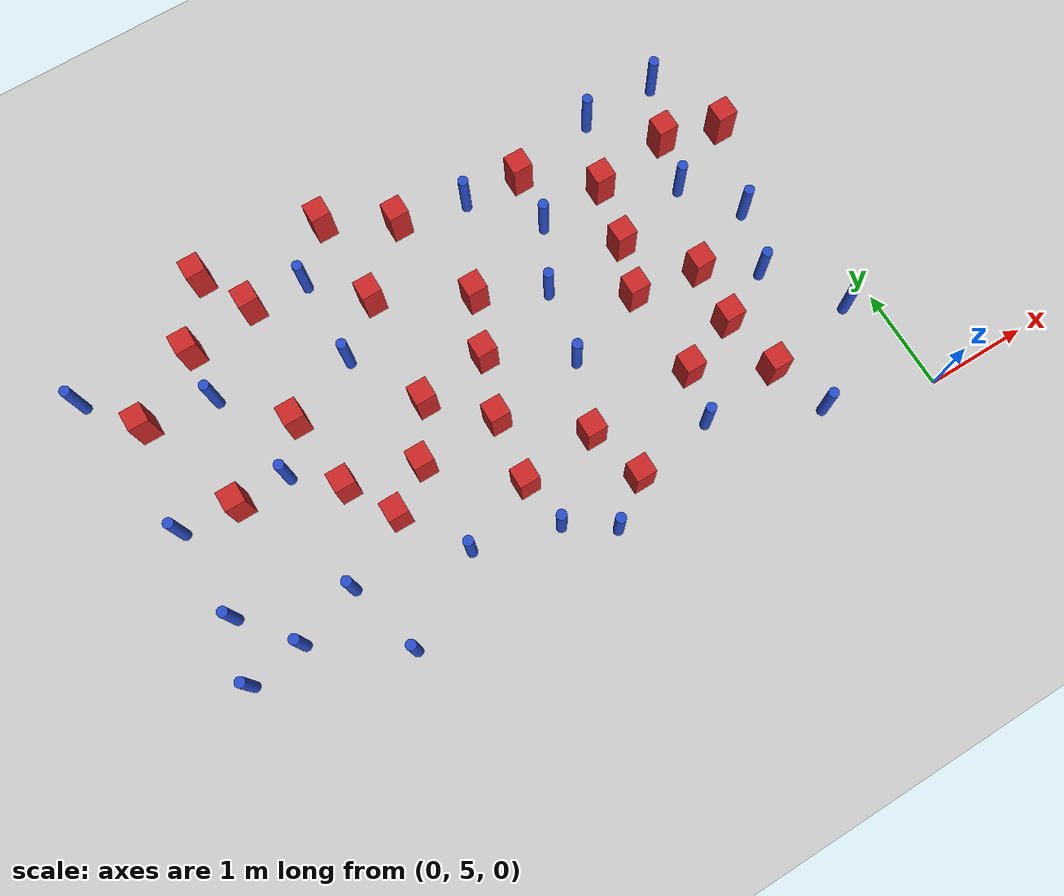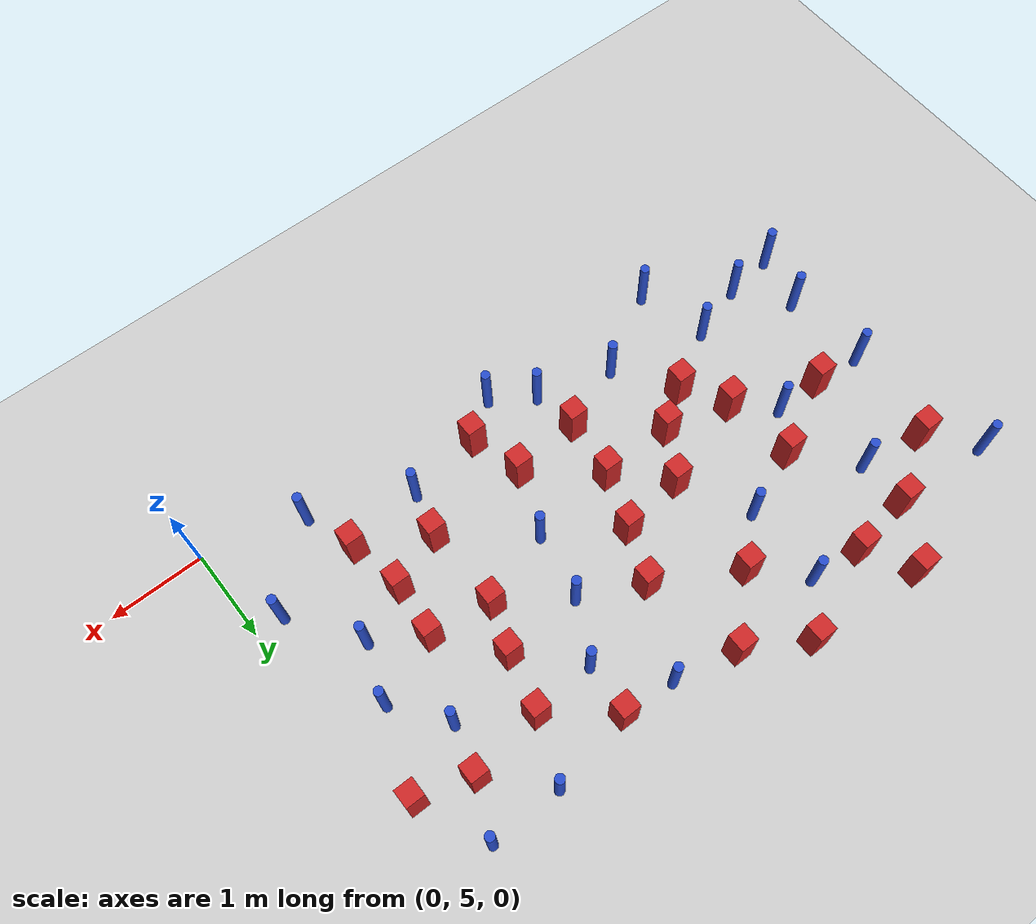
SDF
<sdf version="1.6">
 <world name="default">
  <model name="ground_plane">
   <static>1</static>
   <link name="link">
    <collision name="collision">
     <geometry><plane><normal>0 0 1</normal><size>100 100</size></plane></geometry>
     <surface><friction><ode><mu>100</mu><mu2>50</mu2></ode></friction></surface>
    </collision>
    <visual name="visual">
     <cast_shadows>0</cast_shadows>
     <geometry><plane><normal>0 0 1</normal><size>100 100</size></plane></geometry>
     <material>
      <ambient>1.0 1.0 1.0 1.0</ambient>
      <diffuse>0.8 0.8 0.8 1.0</diffuse>
      <specular>0.01 0.01 0.01 1.000000</specular>
     </material>
    </visual>
   </link>
  </model>
  <model name="pole_obstacle2">
   <static>true</static>
   <pose>-2.05235568331 5.7813444198 7.38925637345e-09 -8.47170692798e-08 1.24976765033e-08 -1.74513093019e-07</pose>
   <link name="link">
    <pose>0 0 0.3 0 -0 0</pose>
    <inertial>
     <mass>1</mass>
     <inertia><ixx>0.145833</ixx><ixy>0</ixy><ixz>0</ixz><iyy>0.145833</iyy><iyz>0</iyz><izz>0.125</izz></inertia>
    </inertial>
    <collision name="collision">
     <geometry><cylinder><radius>0.05</radius><length>.6</length></cylinder></geometry>
    </collision>
    <visual name="visual">
     <geometry><cylinder><radius>0.05</radius><length>.6</length></cylinder></geometry>
     <material>
      <script><name>Gazebo/Blue</name><uri>file://media/materials/scripts/gazebo.material</uri></script>
     </material>
    </visual>
   </link>
  </model>
  <model name="square_post_obstacle9">
   <static>true</static>
   <pose>-2.85442989702 5.66659609784 1.91545236811e-07 -7.35059704564e-06 1.12565212e-07 2.39332434364e-05</pose>
   <link name="link">
    <pose>0 0 0.25 0 -0 0</pose>
    <inertial>
     <mass>100</mass>
     <inertia>
      <ixx>0.166667</ixx>
      <ixy>0</ixy>
      <ixz>0</ixz>
      <iyy>0.166667</iyy>
      <iyz>0</iyz>
      <izz>0.166667</izz>
     </inertia>
    </inertial>
    <collision name="collision"><geometry><box><size>.2 .2 .5</size></box></geometry></collision>
    <visual name="visual">
     <geometry><box><size>.2 .2 .5</size></box></geometry>
     <material>
      <script><name>Gazebo/Red</name><uri>file://media/materials/scripts/gazebo.material</uri></script>
     </material>
    </visual>
   </link>
  </model>
  <model name="square_post_obstacle20">
   <static>true</static>
   <pose>-1.63090544055 8.28647198296 1.91545236811e-07 -7.35059704564e-06 1.12565212e-07 2.39332434364e-05</pose>
   <link name="link">
    <pose>0 0 0.25 0 -0 0</pose>
    <inertial>
     <mass>100</mass>
     <inertia>
      <ixx>0.166667</ixx>
      <ixy>0</ixy>
      <ixz>0</ixz>
      <iyy>0.166667</iyy>
      <iyz>0</iyz>
      <izz>0.166667</izz>
     </inertia>
    </inertial>
    <collision name="collision"><geometry><box><size>.2 .2 .5</size></box></geometry></collision>
    <visual name="visual">
     <geometry><box><size>.2 .2 .5</size></box></geometry>
     <material>
      <script><name>Gazebo/Red</name><uri>file://media/materials/scripts/gazebo.material</uri></script>
     </material>
    </visual>
   </link>
  </model>
  <model name="pole_obstacle17">
   <static>true</static>
   <pose>-2.30111560594 8.23910748175 7.38925637345e-09 -8.47170692793e-08 1.24976764408e-08 -1.74513093041e-07</pose>
   <link name="link">
    <pose>0 0 0.3 0 -0 0</pose>
    <inertial>
     <mass>1</mass>
     <inertia><ixx>0.145833</ixx><ixy>0</ixy><ixz>0</ixz><iyy>0.145833</iyy><iyz>0</iyz><izz>0.125</izz></inertia>
    </inertial>
    <collision name="collision">
     <geometry><cylinder><radius>0.05</radius><length>.6</length></cylinder></geometry>
    </collision>
    <visual name="visual">
     <geometry><cylinder><radius>0.05</radius><length>.6</length></cylinder></geometry>
     <material>
      <script><name>Gazebo/Blue</name><uri>file://media/materials/scripts/gazebo.material</uri></script>
     </material>
    </visual>
   </link>
  </model>
  <model name="square_post_obstacle30">
   <static>true</static>
   <pose>-0.283953292854 8.22880494381 1.91545236811e-07 -7.35059704564e-06 1.12565212e-07 2.39332434364e-05</pose>
   <link name="link">
    <pose>0 0 0.25 0 -0 0</pose>
    <inertial>
     <mass>100</mass>
     <inertia>
      <ixx>0.166667</ixx>
      <ixy>0</ixy>
      <ixz>0</ixz>
      <iyy>0.166667</iyy>
      <iyz>0</iyz>
      <izz>0.166667</izz>
     </inertia>
    </inertial>
    <collision name="collision"><geometry><box><size>.2 .2 .5</size></box></geometry></collision>
    <visual name="visual">
     <geometry><box><size>.2 .2 .5</size></box></geometry>
     <material>
      <script><name>Gazebo/Red</name><uri>file://media/materials/scripts/gazebo.material</uri></script>
     </material>
    </visual>
   </link>
  </model>
  <model name="square_post_obstacle32">
   <static>true</static>
   <pose>-5.16170095081 6.96884501505 1.91545236811e-07 -7.35059704564e-06 1.12565212e-07 2.39332434364e-05</pose>
   <link name="link">
    <pose>0 0 0.25 0 -0 0</pose>
    <inertial>
     <mass>100</mass>
     <inertia>
      <ixx>0.166667</ixx>
      <ixy>0</ixy>
      <ixz>0</ixz>
      <iyy>0.166667</iyy>
      <iyz>0</iyz>
      <izz>0.166667</izz>
     </inertia>
    </inertial>
    <collision name="collision"><geometry><box><size>.2 .2 .5</size></box></geometry></collision>
    <visual name="visual">
     <geometry><box><size>.2 .2 .5</size></box></geometry>
     <material>
      <script><name>Gazebo/Red</name><uri>file://media/materials/scripts/gazebo.material</uri></script>
     </material>
    </visual>
   </link>
  </model>
  <model name="pole_obstacle28">
   <static>true</static>
   <pose>-1.37038856872 8.95715696325 7.38925637345e-09 -8.47170692798e-08 1.24976764881e-08 -1.74513093027e-07</pose>
   <link name="link">
    <pose>0 0 0.3 0 -0 0</pose>
    <inertial>
     <mass>1</mass>
     <inertia><ixx>0.145833</ixx><ixy>0</ixy><ixz>0</ixz><iyy>0.145833</iyy><iyz>0</iyz><izz>0.125</izz></inertia>
    </inertial>
    <collision name="collision">
     <geometry><cylinder><radius>0.05</radius><length>.6</length></cylinder></geometry>
    </collision>
    <visual name="visual">
     <geometry><cylinder><radius>0.05</radius><length>.6</length></cylinder></geometry>
     <material>
      <script><name>Gazebo/Blue</name><uri>file://media/materials/scripts/gazebo.material</uri></script>
     </material>
    </visual>
   </link>
  </model>
  <model name="pole_obstacle42">
   <static>true</static>
   <pose>-3.68540518894 5.65697786786 7.38925637345e-09 -8.47170692798e-08 1.24976765033e-08 -1.74513093019e-07</pose>
   <link name="link">
    <pose>0 0 0.3 0 -0 0</pose>
    <inertial>
     <mass>1</mass>
     <inertia><ixx>0.145833</ixx><ixy>0</ixy><ixz>0</ixz><iyy>0.145833</iyy><iyz>0</iyz><izz>0.125</izz></inertia>
    </inertial>
    <collision name="collision">
     <geometry><cylinder><radius>0.05</radius><length>.6</length></cylinder></geometry>
    </collision>
    <visual name="visual">
     <geometry><cylinder><radius>0.05</radius><length>.6</length></cylinder></geometry>
     <material>
      <script><name>Gazebo/Blue</name><uri>file://media/materials/scripts/gazebo.material</uri></script>
     </material>
    </visual>
   </link>
  </model>
  <model name="pole_obstacle44">
   <static>true</static>
   <pose>-0.303136559903 6.04347579707 7.38925637345e-09 -8.471706928e-08 1.24976765079e-08 -1.74513093015e-07</pose>
   <link name="link">
    <pose>0 0 0.3 0 -0 0</pose>
    <inertial>
     <mass>1</mass>
     <inertia><ixx>0.145833</ixx><ixy>0</ixy><ixz>0</ixz><iyy>0.145833</iyy><iyz>0</iyz><izz>0.125</izz></inertia>
    </inertial>
    <collision name="collision">
     <geometry><cylinder><radius>0.05</radius><length>.6</length></cylinder></geometry>
    </collision>
    <visual name="visual">
     <geometry><cylinder><radius>0.05</radius><length>.6</length></cylinder></geometry>
     <material>
      <script><name>Gazebo/Blue</name><uri>file://media/materials/scripts/gazebo.material</uri></script>
     </material>
    </visual>
   </link>
  </model>
  <model name="square_post_obstacle44">
   <static>true</static>
   <pose>-4.47074708035 6.7832604496 1.91545236811e-07 -7.35059704564e-06 1.12565212e-07 2.39332434364e-05</pose>
   <link name="link">
    <pose>0 0 0.25 0 -0 0</pose>
    <inertial>
     <mass>100</mass>
     <inertia>
      <ixx>0.166667</ixx>
      <ixy>0</ixy>
      <ixz>0</ixz>
      <iyy>0.166667</iyy>
      <iyz>0</iyz>
      <izz>0.166667</izz>
     </inertia>
    </inertial>
    <collision name="collision"><geometry><box><size>.2 .2 .5</size></box></geometry></collision>
    <visual name="visual">
     <geometry><box><size>.2 .2 .5</size></box></geometry>
     <material>
      <script><name>Gazebo/Red</name><uri>file://media/materials/scripts/gazebo.material</uri></script>
     </material>
    </visual>
   </link>
  </model>
  <model name="square_post_obstacle45">
   <static>true</static>
   <pose>-1.77566519149 7.6786776423 1.91545236811e-07 -7.35059704564e-06 1.12565212e-07 2.39332434364e-05</pose>
   <link name="link">
    <pose>0 0 0.25 0 -0 0</pose>
    <inertial>
     <mass>100</mass>
     <inertia>
      <ixx>0.166667</ixx>
      <ixy>0</ixy>
      <ixz>0</ixz>
      <iyy>0.166667</iyy>
      <iyz>0</iyz>
      <izz>0.166667</izz>
     </inertia>
    </inertial>
    <collision name="collision"><geometry><box><size>.2 .2 .5</size></box></geometry></collision>
    <visual name="visual">
     <geometry><box><size>.2 .2 .5</size></box></geometry>
     <material>
      <script><name>Gazebo/Red</name><uri>file://media/materials/scripts/gazebo.material</uri></script>
     </material>
    </visual>
   </link>
  </model>
  <model name="pole_obstacle46">
   <static>true</static>
   <pose>-5.54106864575 6.12801010274 7.38925637345e-09 -8.47170692796e-08 1.24976764786e-08 -1.74513093032e-07</pose>
   <link name="link">
    <pose>0 0 0.3 0 -0 0</pose>
    <inertial>
     <mass>1</mass>
     <inertia><ixx>0.145833</ixx><ixy>0</ixy><ixz>0</ixz><iyy>0.145833</iyy><iyz>0</iyz><izz>0.125</izz></inertia>
    </inertial>
    <collision name="collision">
     <geometry><cylinder><radius>0.05</radius><length>.6</length></cylinder></geometry>
    </collision>
    <visual name="visual">
     <geometry><cylinder><radius>0.05</radius><length>.6</length></cylinder></geometry>
     <material>
      <script><name>Gazebo/Blue</name><uri>file://media/materials/scripts/gazebo.material</uri></script>
     </material>
    </visual>
   </link>
  </model>
  <model name="pole_obstacle50">
   <static>true</static>
   <pose>-2.6156706469 7.62935195743 7.38925637345e-09 -8.47170692798e-08 1.24976765033e-08 -1.74513093019e-07</pose>
   <link name="link">
    <pose>0 0 0.3 0 -0 0</pose>
    <inertial>
     <mass>1</mass>
     <inertia><ixx>0.145833</ixx><ixy>0</ixy><ixz>0</ixz><iyy>0.145833</iyy><iyz>0</iyz><izz>0.125</izz></inertia>
    </inertial>
    <collision name="collision">
     <geometry><cylinder><radius>0.05</radius><length>.6</length></cylinder></geometry>
    </collision>
    <visual name="visual">
     <geometry><cylinder><radius>0.05</radius><length>.6</length></cylinder></geometry>
     <material>
      <script><name>Gazebo/Blue</name><uri>file://media/materials/scripts/gazebo.material</uri></script>
     </material>
    </visual>
   </link>
  </model>
  <model name="square_post_obstacle59">
   <static>true</static>
   <pose>-4.08996802707 8.4220307917 1.91545236811e-07 -7.35059704564e-06 1.12565212e-07 2.39332434364e-05</pose>
   <link name="link">
    <pose>0 0 0.25 0 -0 0</pose>
    <inertial>
     <mass>100</mass>
     <inertia>
      <ixx>0.166667</ixx>
      <ixy>0</ixy>
      <ixz>0</ixz>
      <iyy>0.166667</iyy>
      <iyz>0</iyz>
      <izz>0.166667</izz>
     </inertia>
    </inertial>
    <collision name="collision"><geometry><box><size>.2 .2 .5</size></box></geometry></collision>
    <visual name="visual">
     <geometry><box><size>.2 .2 .5</size></box></geometry>
     <material>
      <script><name>Gazebo/Red</name><uri>file://media/materials/scripts/gazebo.material</uri></script>
     </material>
    </visual>
   </link>
  </model>
  <model name="pole_obstacle57">
   <static>true</static>
   <pose>-2.81979597644 8.8357921418 7.38925637345e-09 -8.47170692793e-08 1.24976764408e-08 -1.74513093041e-07</pose>
   <link name="link">
    <pose>0 0 0.3 0 -0 0</pose>
    <inertial>
     <mass>1</mass>
     <inertia><ixx>0.145833</ixx><ixy>0</ixy><ixz>0</ixz><iyy>0.145833</iyy><iyz>0</iyz><izz>0.125</izz></inertia>
    </inertial>
    <collision name="collision">
     <geometry><cylinder><radius>0.05</radius><length>.6</length></cylinder></geometry>
    </collision>
    <visual name="visual">
     <geometry><cylinder><radius>0.05</radius><length>.6</length></cylinder></geometry>
     <material>
      <script><name>Gazebo/Blue</name><uri>file://media/materials/scripts/gazebo.material</uri></script>
     </material>
    </visual>
   </link>
  </model>
  <model name="square_post_obstacle63">
   <static>true</static>
   <pose>-6.05952056738 7.32410291039 1.91545236811e-07 -7.35059704564e-06 1.12565212e-07 2.39332434364e-05</pose>
   <link name="link">
    <pose>0 0 0.25 0 -0 0</pose>
    <inertial>
     <mass>100</mass>
     <inertia>
      <ixx>0.166667</ixx>
      <ixy>0</ixy>
      <ixz>0</ixz>
      <iyy>0.166667</iyy>
      <iyz>0</iyz>
      <izz>0.166667</izz>
     </inertia>
    </inertial>
    <collision name="collision"><geometry><box><size>.2 .2 .5</size></box></geometry></collision>
    <visual name="visual">
     <geometry><box><size>.2 .2 .5</size></box></geometry>
     <material>
      <script><name>Gazebo/Red</name><uri>file://media/materials/scripts/gazebo.material</uri></script>
     </material>
    </visual>
   </link>
  </model>
  <model name="square_post_obstacle70">
   <static>true</static>
   <pose>-5.37658399443 9.45192045014 1.91545236811e-07 -7.35059704564e-06 1.12565212e-07 2.39332434364e-05</pose>
   <link name="link">
    <pose>0 0 0.25 0 -0 0</pose>
    <inertial>
     <mass>100</mass>
     <inertia>
      <ixx>0.166667</ixx>
      <ixy>0</ixy>
      <ixz>0</ixz>
      <iyy>0.166667</iyy>
      <iyz>0</iyz>
      <izz>0.166667</izz>
     </inertia>
    </inertial>
    <collision name="collision"><geometry><box><size>.2 .2 .5</size></box></geometry></collision>
    <visual name="visual">
     <geometry><box><size>.2 .2 .5</size></box></geometry>
     <material>
      <script><name>Gazebo/Red</name><uri>file://media/materials/scripts/gazebo.material</uri></script>
     </material>
    </visual>
   </link>
  </model>
  <model name="square_post_obstacle74">
   <static>true</static>
   <pose>-2.25332398965 8.78657249056 1.91545236811e-07 -7.35059704564e-06 1.12565212e-07 2.39332434364e-05</pose>
   <link name="link">
    <pose>0 0 0.25 0 -0 0</pose>
    <inertial>
     <mass>100</mass>
     <inertia>
      <ixx>0.166667</ixx>
      <ixy>0</ixy>
      <ixz>0</ixz>
      <iyy>0.166667</iyy>
      <iyz>0</iyz>
      <izz>0.166667</izz>
     </inertia>
    </inertial>
    <collision name="collision"><geometry><box><size>.2 .2 .5</size></box></geometry></collision>
    <visual name="visual">
     <geometry><box><size>.2 .2 .5</size></box></geometry>
     <material>
      <script><name>Gazebo/Red</name><uri>file://media/materials/scripts/gazebo.material</uri></script>
     </material>
    </visual>
   </link>
  </model>
  <model name="square_post_obstacle76">
   <static>true</static>
   <pose>-1.29769928294 7.07150250357 1.91545236811e-07 -7.35059704564e-06 1.12565212e-07 2.39332434364e-05</pose>
   <link name="link">
    <pose>0 0 0.25 0 -0 0</pose>
    <inertial>
     <mass>100</mass>
     <inertia>
      <ixx>0.166667</ixx>
      <ixy>0</ixy>
      <ixz>0</ixz>
      <iyy>0.166667</iyy>
      <iyz>0</iyz>
      <izz>0.166667</izz>
     </inertia>
    </inertial>
    <collision name="collision"><geometry><box><size>.2 .2 .5</size></box></geometry></collision>
    <visual name="visual">
     <geometry><box><size>.2 .2 .5</size></box></geometry>
     <material>
      <script><name>Gazebo/Red</name><uri>file://media/materials/scripts/gazebo.material</uri></script>
     </material>
    </visual>
   </link>
  </model>
  <model name="pole_obstacle89">
   <static>true</static>
   <pose>-5.55924194064 7.32618800866 7.38925637345e-09 -8.47170692796e-08 1.24976764786e-08 -1.74513093032e-07</pose>
   <link name="link">
    <pose>0 0 0.3 0 -0 0</pose>
    <inertial>
     <mass>1</mass>
     <inertia><ixx>0.145833</ixx><ixy>0</ixy><ixz>0</ixz><iyy>0.145833</iyy><iyz>0</iyz><izz>0.125</izz></inertia>
    </inertial>
    <collision name="collision">
     <geometry><cylinder><radius>0.05</radius><length>.6</length></cylinder></geometry>
    </collision>
    <visual name="visual">
     <geometry><cylinder><radius>0.05</radius><length>.6</length></cylinder></geometry>
     <material>
      <script><name>Gazebo/Blue</name><uri>file://media/materials/scripts/gazebo.material</uri></script>
     </material>
    </visual>
   </link>
  </model>
  <model name="pole_obstacle92">
   <static>true</static>
   <pose>-0.977474751525 7.8932325363 7.38925637345e-09 -8.47170692799e-08 1.2497676509e-08 -1.74513093015e-07</pose>
   <link name="link">
    <pose>0 0 0.3 0 -0 0</pose>
    <inertial>
     <mass>1</mass>
     <inertia><ixx>0.145833</ixx><ixy>0</ixy><ixz>0</ixz><iyy>0.145833</iyy><iyz>0</iyz><izz>0.125</izz></inertia>
    </inertial>
    <collision name="collision">
     <geometry><cylinder><radius>0.05</radius><length>.6</length></cylinder></geometry>
    </collision>
    <visual name="visual">
     <geometry><cylinder><radius>0.05</radius><length>.6</length></cylinder></geometry>
     <material>
      <script><name>Gazebo/Blue</name><uri>file://media/materials/scripts/gazebo.material</uri></script>
     </material>
    </visual>
   </link>
  </model>
  <model name="pole_obstacle103">
   <static>true</static>
   <pose>-4.55988121987 8.01883214712 7.38925637345e-09 -8.47170692797e-08 1.24976764908e-08 -1.74513093024e-07</pose>
   <link name="link">
    <pose>0 0 0.3 0 -0 0</pose>
    <inertial>
     <mass>1</mass>
     <inertia><ixx>0.145833</ixx><ixy>0</ixy><ixz>0</ixz><iyy>0.145833</iyy><iyz>0</iyz><izz>0.125</izz></inertia>
    </inertial>
    <collision name="collision">
     <geometry><cylinder><radius>0.05</radius><length>.6</length></cylinder></geometry>
    </collision>
    <visual name="visual">
     <geometry><cylinder><radius>0.05</radius><length>.6</length></cylinder></geometry>
     <material>
      <script><name>Gazebo/Blue</name><uri>file://media/materials/scripts/gazebo.material</uri></script>
     </material>
    </visual>
   </link>
  </model>
  <model name="square_post_obstacle94">
   <static>true</static>
   <pose>-5.09435517928 8.94712184973 1.91545236811e-07 -7.35059704564e-06 1.12565212e-07 2.39332434364e-05</pose>
   <link name="link">
    <pose>0 0 0.25 0 -0 0</pose>
    <inertial>
     <mass>100</mass>
     <inertia>
      <ixx>0.166667</ixx>
      <ixy>0</ixy>
      <ixz>0</ixz>
      <iyy>0.166667</iyy>
      <iyz>0</iyz>
      <izz>0.166667</izz>
     </inertia>
    </inertial>
    <collision name="collision"><geometry><box><size>.2 .2 .5</size></box></geometry></collision>
    <visual name="visual">
     <geometry><box><size>.2 .2 .5</size></box></geometry>
     <material>
      <script><name>Gazebo/Red</name><uri>file://media/materials/scripts/gazebo.material</uri></script>
     </material>
    </visual>
   </link>
  </model>
  <model name="square_post_obstacle97">
   <static>true</static>
   <pose>-5.7809474143 8.84381801006 1.91545236811e-07 -7.35059704564e-06 1.12565212e-07 2.39332434364e-05</pose>
   <link name="link">
    <pose>0 0 0.25 0 -0 0</pose>
    <inertial>
     <mass>100</mass>
     <inertia>
      <ixx>0.166667</ixx>
      <ixy>0</ixy>
      <ixz>0</ixz>
      <iyy>0.166667</iyy>
      <iyz>0</iyz>
      <izz>0.166667</izz>
     </inertia>
    </inertial>
    <collision name="collision"><geometry><box><size>.2 .2 .5</size></box></geometry></collision>
    <visual name="visual">
     <geometry><box><size>.2 .2 .5</size></box></geometry>
     <material>
      <script><name>Gazebo/Red</name><uri>file://media/materials/scripts/gazebo.material</uri></script>
     </material>
    </visual>
   </link>
  </model>
  <model name="pole_obstacle111">
   <static>true</static>
   <pose>-0.607305707706 8.967530057 7.38925637345e-09 -8.47170692797e-08 1.249767648e-08 -1.74513093032e-07</pose>
   <link name="link">
    <pose>0 0 0.3 0 -0 0</pose>
    <inertial>
     <mass>1</mass>
     <inertia><ixx>0.145833</ixx><ixy>0</ixy><ixz>0</ixz><iyy>0.145833</iyy><iyz>0</iyz><izz>0.125</izz></inertia>
    </inertial>
    <collision name="collision">
     <geometry><cylinder><radius>0.05</radius><length>.6</length></cylinder></geometry>
    </collision>
    <visual name="visual">
     <geometry><cylinder><radius>0.05</radius><length>.6</length></cylinder></geometry>
     <material>
      <script><name>Gazebo/Blue</name><uri>file://media/materials/scripts/gazebo.material</uri></script>
     </material>
    </visual>
   </link>
  </model>
  <model name="square_post_obstacle108">
   <static>true</static>
   <pose>-3.75960846203 6.15755080581 1.91545236811e-07 -7.35059704564e-06 1.12565212e-07 2.39332434364e-05</pose>
   <link name="link">
    <pose>0 0 0.25 0 -0 0</pose>
    <inertial>
     <mass>100</mass>
     <inertia>
      <ixx>0.166667</ixx>
      <ixy>0</ixy>
      <ixz>0</ixz>
      <iyy>0.166667</iyy>
      <iyz>0</iyz>
      <izz>0.166667</izz>
     </inertia>
    </inertial>
    <collision name="collision"><geometry><box><size>.2 .2 .5</size></box></geometry></collision>
    <visual name="visual">
     <geometry><box><size>.2 .2 .5</size></box></geometry>
     <material>
      <script><name>Gazebo/Red</name><uri>file://media/materials/scripts/gazebo.material</uri></script>
     </material>
    </visual>
   </link>
  </model>
  <model name="pole_obstacle123">
   <static>true</static>
   <pose>-1.04994637408 5.3256394457 7.38925637345e-09 -8.47170692799e-08 1.2497676505e-08 -1.74513093018e-07</pose>
   <link name="link">
    <pose>0 0 0.3 0 -0 0</pose>
    <inertial>
     <mass>1</mass>
     <inertia><ixx>0.145833</ixx><ixy>0</ixy><ixz>0</ixz><iyy>0.145833</iyy><iyz>0</iyz><izz>0.125</izz></inertia>
    </inertial>
    <collision name="collision">
     <geometry><cylinder><radius>0.05</radius><length>.6</length></cylinder></geometry>
    </collision>
    <visual name="visual">
     <geometry><cylinder><radius>0.05</radius><length>.6</length></cylinder></geometry>
     <material>
      <script><name>Gazebo/Blue</name><uri>file://media/materials/scripts/gazebo.material</uri></script>
     </material>
    </visual>
   </link>
  </model>
  <model name="pole_obstacle126">
   <static>true</static>
   <pose>-6.14815340424 5.93255443952 7.38925637345e-09 -8.47170692796e-08 1.24976764786e-08 -1.74513093032e-07</pose>
   <link name="link">
    <pose>0 0 0.3 0 -0 0</pose>
    <inertial>
     <mass>1</mass>
     <inertia><ixx>0.145833</ixx><ixy>0</ixy><ixz>0</ixz><iyy>0.145833</iyy><iyz>0</iyz><izz>0.125</izz></inertia>
    </inertial>
    <collision name="collision">
     <geometry><cylinder><radius>0.05</radius><length>.6</length></cylinder></geometry>
    </collision>
    <visual name="visual">
     <geometry><cylinder><radius>0.05</radius><length>.6</length></cylinder></geometry>
     <material>
      <script><name>Gazebo/Blue</name><uri>file://media/materials/scripts/gazebo.material</uri></script>
     </material>
    </visual>
   </link>
  </model>
  <model name="pole_obstacle127">
   <static>true</static>
   <pose>-5.33431636704 5.37856413525 7.38925637345e-09 -8.47170692796e-08 1.24976764786e-08 -1.74513093032e-07</pose>
   <link name="link">
    <pose>0 0 0.3 0 -0 0</pose>
    <inertial>
     <mass>1</mass>
     <inertia><ixx>0.145833</ixx><ixy>0</ixy><ixz>0</ixz><iyy>0.145833</iyy><iyz>0</iyz><izz>0.125</izz></inertia>
    </inertial>
    <collision name="collision">
     <geometry><cylinder><radius>0.05</radius><length>.6</length></cylinder></geometry>
    </collision>
    <visual name="visual">
     <geometry><cylinder><radius>0.05</radius><length>.6</length></cylinder></geometry>
     <material>
      <script><name>Gazebo/Blue</name><uri>file://media/materials/scripts/gazebo.material</uri></script>
     </material>
    </visual>
   </link>
  </model>
  <model name="square_post_obstacle115">
   <static>true</static>
   <pose>-3.24395472816 7.94143597845 1.91545236811e-07 -7.35059704564e-06 1.12565212e-07 2.39332434364e-05</pose>
   <link name="link">
    <pose>0 0 0.25 0 -0 0</pose>
    <inertial>
     <mass>100</mass>
     <inertia>
      <ixx>0.166667</ixx>
      <ixy>0</ixy>
      <ixz>0</ixz>
      <iyy>0.166667</iyy>
      <iyz>0</iyz>
      <izz>0.166667</izz>
     </inertia>
    </inertial>
    <collision name="collision"><geometry><box><size>.2 .2 .5</size></box></geometry></collision>
    <visual name="visual">
     <geometry><box><size>.2 .2 .5</size></box></geometry>
     <material>
      <script><name>Gazebo/Red</name><uri>file://media/materials/scripts/gazebo.material</uri></script>
     </material>
    </visual>
   </link>
  </model>
  <model name="pole_obstacle134">
   <static>true</static>
   <pose>-6.69459446181 5.85579628059 7.38925637345e-09 -8.47170692796e-08 1.24976764786e-08 -1.74513093032e-07</pose>
   <link name="link">
    <pose>0 0 0.3 0 -0 0</pose>
    <inertial>
     <mass>1</mass>
     <inertia><ixx>0.145833</ixx><ixy>0</ixy><ixz>0</ixz><iyy>0.145833</iyy><iyz>0</iyz><izz>0.125</izz></inertia>
    </inertial>
    <collision name="collision">
     <geometry><cylinder><radius>0.05</radius><length>.6</length></cylinder></geometry>
    </collision>
    <visual name="visual">
     <geometry><cylinder><radius>0.05</radius><length>.6</length></cylinder></geometry>
     <material>
      <script><name>Gazebo/Blue</name><uri>file://media/materials/scripts/gazebo.material</uri></script>
     </material>
    </visual>
   </link>
  </model>
  <model name="pole_obstacle138">
   <static>true</static>
   <pose>-4.48553714155 5.88292029603 7.38925637345e-09 -8.47170692796e-08 1.24976764786e-08 -1.74513093032e-07</pose>
   <link name="link">
    <pose>0 0 0.3 0 -0 0</pose>
    <inertial>
     <mass>1</mass>
     <inertia><ixx>0.145833</ixx><ixy>0</ixy><ixz>0</ixz><iyy>0.145833</iyy><iyz>0</iyz><izz>0.125</izz></inertia>
    </inertial>
    <collision name="collision">
     <geometry><cylinder><radius>0.05</radius><length>.6</length></cylinder></geometry>
    </collision>
    <visual name="visual">
     <geometry><cylinder><radius>0.05</radius><length>.6</length></cylinder></geometry>
     <material>
      <script><name>Gazebo/Blue</name><uri>file://media/materials/scripts/gazebo.material</uri></script>
     </material>
    </visual>
   </link>
  </model>
  <model name="square_post_obstacle122">
   <static>true</static>
   <pose>-4.88945038623 6.49772064754 1.91545236811e-07 -7.35059704564e-06 1.12565212e-07 2.39332434364e-05</pose>
   <link name="link">
    <pose>0 0 0.25 0 -0 0</pose>
    <inertial>
     <mass>100</mass>
     <inertia>
      <ixx>0.166667</ixx>
      <ixy>0</ixy>
      <ixz>0</ixz>
      <iyy>0.166667</iyy>
      <iyz>0</iyz>
      <izz>0.166667</izz>
     </inertia>
    </inertial>
    <collision name="collision"><geometry><box><size>.2 .2 .5</size></box></geometry></collision>
    <visual name="visual">
     <geometry><box><size>.2 .2 .5</size></box></geometry>
     <material>
      <script><name>Gazebo/Red</name><uri>file://media/materials/scripts/gazebo.material</uri></script>
     </material>
    </visual>
   </link>
  </model>
  <model name="square_post_obstacle140">
   <static>true</static>
   <pose>-1.35116271858 6.49590897817 1.91545236811e-07 -7.35059704564e-06 1.12565212e-07 2.39332434364e-05</pose>
   <link name="link">
    <pose>0 0 0.25 0 -0 0</pose>
    <inertial>
     <mass>100</mass>
     <inertia>
      <ixx>0.166667</ixx>
      <ixy>0</ixy>
      <ixz>0</ixz>
      <iyy>0.166667</iyy>
      <iyz>0</iyz>
      <izz>0.166667</izz>
     </inertia>
    </inertial>
    <collision name="collision"><geometry><box><size>.2 .2 .5</size></box></geometry></collision>
    <visual name="visual">
     <geometry><box><size>.2 .2 .5</size></box></geometry>
     <material>
      <script><name>Gazebo/Red</name><uri>file://media/materials/scripts/gazebo.material</uri></script>
     </material>
    </visual>
   </link>
  </model>
  <model name="square_post_obstacle141">
   <static>true</static>
   <pose>-4.12277265242 9.34824872766 1.91545236811e-07 -7.35059704564e-06 1.12565212e-07 2.39332434364e-05</pose>
   <link name="link">
    <pose>0 0 0.25 0 -0 0</pose>
    <inertial>
     <mass>100</mass>
     <inertia>
      <ixx>0.166667</ixx>
      <ixy>0</ixy>
      <ixz>0</ixz>
      <iyy>0.166667</iyy>
      <iyz>0</iyz>
      <izz>0.166667</izz>
     </inertia>
    </inertial>
    <collision name="collision"><geometry><box><size>.2 .2 .5</size></box></geometry></collision>
    <visual name="visual">
     <geometry><box><size>.2 .2 .5</size></box></geometry>
     <material>
      <script><name>Gazebo/Red</name><uri>file://media/materials/scripts/gazebo.material</uri></script>
     </material>
    </visual>
   </link>
  </model>
  <model name="pole_obstacle154">
   <static>true</static>
   <pose>-2.75049698205 6.90812840892 7.38925637345e-09 -8.47170692798e-08 1.24976765033e-08 -1.74513093019e-07</pose>
   <link name="link">
    <pose>0 0 0.3 0 -0 0</pose>
    <inertial>
     <mass>1</mass>
     <inertia><ixx>0.145833</ixx><ixy>0</ixy><ixz>0</ixz><iyy>0.145833</iyy><iyz>0</iyz><izz>0.125</izz></inertia>
    </inertial>
    <collision name="collision">
     <geometry><cylinder><radius>0.05</radius><length>.6</length></cylinder></geometry>
    </collision>
    <visual name="visual">
     <geometry><cylinder><radius>0.05</radius><length>.6</length></cylinder></geometry>
     <material>
      <script><name>Gazebo/Blue</name><uri>file://media/materials/scripts/gazebo.material</uri></script>
     </material>
    </visual>
   </link>
  </model>
  <model name="square_post_obstacle148">
   <static>true</static>
   <pose>-3.67666476591 6.80190815632 1.91545236811e-07 -7.35059704564e-06 1.12565212e-07 2.39332434364e-05</pose>
   <link name="link">
    <pose>0 0 0.25 0 -0 0</pose>
    <inertial>
     <mass>100</mass>
     <inertia>
      <ixx>0.166667</ixx>
      <ixy>0</ixy>
      <ixz>0</ixz>
      <iyy>0.166667</iyy>
      <iyz>0</iyz>
      <izz>0.166667</izz>
     </inertia>
    </inertial>
    <collision name="collision"><geometry><box><size>.2 .2 .5</size></box></geometry></collision>
    <visual name="visual">
     <geometry><box><size>.2 .2 .5</size></box></geometry>
     <material>
      <script><name>Gazebo/Red</name><uri>file://media/materials/scripts/gazebo.material</uri></script>
     </material>
    </visual>
   </link>
  </model>
  <model name="square_post_obstacle151">
   <static>true</static>
   <pose>-5.25893157295 7.73944689189 1.91545236811e-07 -7.35059704564e-06 1.12565212e-07 2.39332434364e-05</pose>
   <link name="link">
    <pose>0 0 0.25 0 -0 0</pose>
    <inertial>
     <mass>100</mass>
     <inertia>
      <ixx>0.166667</ixx>
      <ixy>0</ixy>
      <ixz>0</ixz>
      <iyy>0.166667</iyy>
      <iyz>0</iyz>
      <izz>0.166667</izz>
     </inertia>
    </inertial>
    <collision name="collision"><geometry><box><size>.2 .2 .5</size></box></geometry></collision>
    <visual name="visual">
     <geometry><box><size>.2 .2 .5</size></box></geometry>
     <material>
      <script><name>Gazebo/Red</name><uri>file://media/materials/scripts/gazebo.material</uri></script>
     </material>
    </visual>
   </link>
  </model>
  <model name="square_post_obstacle160">
   <static>true</static>
   <pose>-1.24387206346 5.88650934808 1.91545236811e-07 -7.35059704564e-06 1.12565212e-07 2.39332434364e-05</pose>
   <link name="link">
    <pose>0 0 0.25 0 -0 0</pose>
    <inertial>
     <mass>100</mass>
     <inertia>
      <ixx>0.166667</ixx>
      <ixy>0</ixy>
      <ixz>0</ixz>
      <iyy>0.166667</iyy>
      <iyz>0</iyz>
      <izz>0.166667</izz>
     </inertia>
    </inertial>
    <collision name="collision"><geometry><box><size>.2 .2 .5</size></box></geometry></collision>
    <visual name="visual">
     <geometry><box><size>.2 .2 .5</size></box></geometry>
     <material>
      <script><name>Gazebo/Red</name><uri>file://media/materials/scripts/gazebo.material</uri></script>
     </material>
    </visual>
   </link>
  </model>
  <model name="pole_obstacle169">
   <static>true</static>
   <pose>-3.26174209437 5.36574612689 7.38925637345e-09 -8.47170692798e-08 1.24976765033e-08 -1.74513093019e-07</pose>
   <link name="link">
    <pose>0 0 0.3 0 -0 0</pose>
    <inertial>
     <mass>1</mass>
     <inertia><ixx>0.145833</ixx><ixy>0</ixy><ixz>0</ixz><iyy>0.145833</iyy><iyz>0</iyz><izz>0.125</izz></inertia>
    </inertial>
    <collision name="collision">
     <geometry><cylinder><radius>0.05</radius><length>.6</length></cylinder></geometry>
    </collision>
    <visual name="visual">
     <geometry><cylinder><radius>0.05</radius><length>.6</length></cylinder></geometry>
     <material>
      <script><name>Gazebo/Blue</name><uri>file://media/materials/scripts/gazebo.material</uri></script>
     </material>
    </visual>
   </link>
  </model>
  <model name="square_post_obstacle163">
   <static>true</static>
   <pose>-4.16318769209 7.28987162544 1.91545236811e-07 -7.35059704564e-06 1.12565212e-07 2.39332434364e-05</pose>
   <link name="link">
    <pose>0 0 0.25 0 -0 0</pose>
    <inertial>
     <mass>100</mass>
     <inertia>
      <ixx>0.166667</ixx>
      <ixy>0</ixy>
      <ixz>0</ixz>
      <iyy>0.166667</iyy>
      <iyz>0</iyz>
      <izz>0.166667</izz>
     </inertia>
    </inertial>
    <collision name="collision"><geometry><box><size>.2 .2 .5</size></box></geometry></collision>
    <visual name="visual">
     <geometry><box><size>.2 .2 .5</size></box></geometry>
     <material>
      <script><name>Gazebo/Red</name><uri>file://media/materials/scripts/gazebo.material</uri></script>
     </material>
    </visual>
   </link>
  </model>
  <model name="pole_obstacle176">
   <static>true</static>
   <pose>-6.61024540207 7.36835900358 7.38925637345e-09 -8.47170692796e-08 1.24976764786e-08 -1.74513093032e-07</pose>
   <link name="link">
    <pose>0 0 0.3 0 -0 0</pose>
    <inertial>
     <mass>1</mass>
     <inertia><ixx>0.145833</ixx><ixy>0</ixy><ixz>0</ixz><iyy>0.145833</iyy><iyz>0</iyz><izz>0.125</izz></inertia>
    </inertial>
    <collision name="collision">
     <geometry><cylinder><radius>0.05</radius><length>.6</length></cylinder></geometry>
    </collision>
    <visual name="visual">
     <geometry><cylinder><radius>0.05</radius><length>.6</length></cylinder></geometry>
     <material>
      <script><name>Gazebo/Blue</name><uri>file://media/materials/scripts/gazebo.material</uri></script>
     </material>
    </visual>
   </link>
  </model>
  <model name="square_post_obstacle171">
   <static>true</static>
   <pose>-1.9515278704 7.17715143192 1.91545236811e-07 -7.35059704564e-06 1.12565212e-07 2.39332434364e-05</pose>
   <link name="link">
    <pose>0 0 0.25 0 -0 0</pose>
    <inertial>
     <mass>100</mass>
     <inertia>
      <ixx>0.166667</ixx>
      <ixy>0</ixy>
      <ixz>0</ixz>
      <iyy>0.166667</iyy>
      <iyz>0</iyz>
      <izz>0.166667</izz>
     </inertia>
    </inertial>
    <collision name="collision"><geometry><box><size>.2 .2 .5</size></box></geometry></collision>
    <visual name="visual">
     <geometry><box><size>.2 .2 .5</size></box></geometry>
     <material>
      <script><name>Gazebo/Red</name><uri>file://media/materials/scripts/gazebo.material</uri></script>
     </material>
    </visual>
   </link>
  </model>
  <model name="pole_obstacle188">
   <static>true</static>
   <pose>-0.791066389478 6.75133625906 7.38925637345e-09 -8.471706928e-08 1.24976765086e-08 -1.74513093015e-07</pose>
   <link name="link">
    <pose>0 0 0.3 0 -0 0</pose>
    <inertial>
     <mass>1</mass>
     <inertia><ixx>0.145833</ixx><ixy>0</ixy><ixz>0</ixz><iyy>0.145833</iyy><iyz>0</iyz><izz>0.125</izz></inertia>
    </inertial>
    <collision name="collision">
     <geometry><cylinder><radius>0.05</radius><length>.6</length></cylinder></geometry>
    </collision>
    <visual name="visual">
     <geometry><cylinder><radius>0.05</radius><length>.6</length></cylinder></geometry>
     <material>
      <script><name>Gazebo/Blue</name><uri>file://media/materials/scripts/gazebo.material</uri></script>
     </material>
    </visual>
   </link>
  </model>
  <model name="square_post_obstacle177">
   <static>true</static>
   <pose>-3.49166480378 8.9767076586 1.91545236811e-07 -7.35059704564e-06 1.12565212e-07 2.39332434364e-05</pose>
   <link name="link">
    <pose>0 0 0.25 0 -0 0</pose>
    <inertial>
     <mass>100</mass>
     <inertia>
      <ixx>0.166667</ixx>
      <ixy>0</ixy>
      <ixz>0</ixz>
      <iyy>0.166667</iyy>
      <iyz>0</iyz>
      <izz>0.166667</izz>
     </inertia>
    </inertial>
    <collision name="collision"><geometry><box><size>.2 .2 .5</size></box></geometry></collision>
    <visual name="visual">
     <geometry><box><size>.2 .2 .5</size></box></geometry>
     <material>
      <script><name>Gazebo/Red</name><uri>file://media/materials/scripts/gazebo.material</uri></script>
     </material>
    </visual>
   </link>
  </model>
  <model name="pole_obstacle191">
   <static>true</static>
   <pose>-0.583425986868 7.35685243048 7.38925637345e-09 -8.471706928e-08 1.24976765086e-08 -1.74513093015e-07</pose>
   <link name="link">
    <pose>0 0 0.3 0 -0 0</pose>
    <inertial>
     <mass>1</mass>
     <inertia><ixx>0.145833</ixx><ixy>0</ixy><ixz>0</ixz><iyy>0.145833</iyy><iyz>0</iyz><izz>0.125</izz></inertia>
    </inertial>
    <collision name="collision">
     <geometry><cylinder><radius>0.05</radius><length>.6</length></cylinder></geometry>
    </collision>
    <visual name="visual">
     <geometry><cylinder><radius>0.05</radius><length>.6</length></cylinder></geometry>
     <material>
      <script><name>Gazebo/Blue</name><uri>file://media/materials/scripts/gazebo.material</uri></script>
     </material>
    </visual>
   </link>
  </model>
  <model name="square_post_obstacle189">
   <static>true</static>
   <pose>-3.46882833022 7.38557437579 1.91545236811e-07 -7.35059704564e-06 1.12565212e-07 2.39332434364e-05</pose>
   <link name="link">
    <pose>0 0 0.25 0 -0 0</pose>
    <inertial>
     <mass>100</mass>
     <inertia>
      <ixx>0.166667</ixx>
      <ixy>0</ixy>
      <ixz>0</ixz>
      <iyy>0.166667</iyy>
      <iyz>0</iyz>
      <izz>0.166667</izz>
     </inertia>
    </inertial>
    <collision name="collision"><geometry><box><size>.2 .2 .5</size></box></geometry></collision>
    <visual name="visual">
     <geometry><box><size>.2 .2 .5</size></box></geometry>
     <material>
      <script><name>Gazebo/Red</name><uri>file://media/materials/scripts/gazebo.material</uri></script>
     </material>
    </visual>
   </link>
  </model>
  <model name="pole_obstacle193">
   <static>true</static>
   <pose>-6.5565619482 6.44903773516 7.38925637345e-09 -8.47170692796e-08 1.24976764786e-08 -1.74513093032e-07</pose>
   <link name="link">
    <pose>0 0 0.3 0 -0 0</pose>
    <inertial>
     <mass>1</mass>
     <inertia><ixx>0.145833</ixx><ixy>0</ixy><ixz>0</ixz><iyy>0.145833</iyy><iyz>0</iyz><izz>0.125</izz></inertia>
    </inertial>
    <collision name="collision">
     <geometry><cylinder><radius>0.05</radius><length>.6</length></cylinder></geometry>
    </collision>
    <visual name="visual">
     <geometry><cylinder><radius>0.05</radius><length>.6</length></cylinder></geometry>
     <material>
      <script><name>Gazebo/Blue</name><uri>file://media/materials/scripts/gazebo.material</uri></script>
     </material>
    </visual>
   </link>
  </model>
  <model name="square_post_obstacle191">
   <static>true</static>
   <pose>-0.849683259327 8.40293022473 1.91545236811e-07 -7.35059704564e-06 1.12565212e-07 2.39332434364e-05</pose>
   <link name="link">
    <pose>0 0 0.25 0 -0 0</pose>
    <inertial>
     <mass>100</mass>
     <inertia>
      <ixx>0.166667</ixx>
      <ixy>0</ixy>
      <ixz>0</ixz>
      <iyy>0.166667</iyy>
      <iyz>0</iyz>
      <izz>0.166667</izz>
     </inertia>
    </inertial>
    <collision name="collision"><geometry><box><size>.2 .2 .5</size></box></geometry></collision>
    <visual name="visual">
     <geometry><box><size>.2 .2 .5</size></box></geometry>
     <material>
      <script><name>Gazebo/Red</name><uri>file://media/materials/scripts/gazebo.material</uri></script>
     </material>
    </visual>
   </link>
  </model>
  <model name="pole_obstacle200">
   <static>true</static>
   <pose>-4.54423667263 8.89691800386 7.38925637345e-09 -8.471706928e-08 1.24976765081e-08 -1.74513093015e-07</pose>
   <link name="link">
    <pose>0 0 0.3 0 -0 0</pose>
    <inertial>
     <mass>1</mass>
     <inertia><ixx>0.145833</ixx><ixy>0</ixy><ixz>0</ixz><iyy>0.145833</iyy><iyz>0</iyz><izz>0.125</izz></inertia>
    </inertial>
    <collision name="collision">
     <geometry><cylinder><radius>0.05</radius><length>.6</length></cylinder></geometry>
    </collision>
    <visual name="visual">
     <geometry><cylinder><radius>0.05</radius><length>.6</length></cylinder></geometry>
     <material>
      <script><name>Gazebo/Blue</name><uri>file://media/materials/scripts/gazebo.material</uri></script>
     </material>
    </visual>
   </link>
  </model>
  <model name="pole_obstacle202">
   <static>true</static>
   <pose>-6.86785405019 8.91540256849 7.38925637345e-09 -8.471706928e-08 1.24976765081e-08 -1.74513093015e-07</pose>
   <link name="link">
    <pose>0 0 0.3 0 -0 0</pose>
    <inertial>
     <mass>1</mass>
     <inertia><ixx>0.145833</ixx><ixy>0</ixy><ixz>0</ixz><iyy>0.145833</iyy><iyz>0</iyz><izz>0.125</izz></inertia>
    </inertial>
    <collision name="collision">
     <geometry><cylinder><radius>0.05</radius><length>.6</length></cylinder></geometry>
    </collision>
    <visual name="visual">
     <geometry><cylinder><radius>0.05</radius><length>.6</length></cylinder></geometry>
     <material>
      <script><name>Gazebo/Blue</name><uri>file://media/materials/scripts/gazebo.material</uri></script>
     </material>
    </visual>
   </link>
  </model>
  <model name="pole_obstacle206">
   <static>true</static>
   <pose>-5.78819433625 8.31875836146 7.38925637345e-09 -8.471706928e-08 1.24976765081e-08 -1.74513093015e-07</pose>
   <link name="link">
    <pose>0 0 0.3 0 -0 0</pose>
    <inertial>
     <mass>1</mass>
     <inertia><ixx>0.145833</ixx><ixy>0</ixy><ixz>0</ixz><iyy>0.145833</iyy><iyz>0</iyz><izz>0.125</izz></inertia>
    </inertial>
    <collision name="collision">
     <geometry><cylinder><radius>0.05</radius><length>.6</length></cylinder></geometry>
    </collision>
    <visual name="visual">
     <geometry><cylinder><radius>0.05</radius><length>.6</length></cylinder></geometry>
     <material>
      <script><name>Gazebo/Blue</name><uri>file://media/materials/scripts/gazebo.material</uri></script>
     </material>
    </visual>
   </link>
  </model>
  <model name="square_post_obstacle203">
   <static>true</static>
   <pose>-1.92771777524 6.27384803491 1.91545236811e-07 -7.35059704564e-06 1.12565212e-07 2.39332434364e-05</pose>
   <link name="link">
    <pose>0 0 0.25 0 -0 0</pose>
    <inertial>
     <mass>100</mass>
     <inertia>
      <ixx>0.166667</ixx>
      <ixy>0</ixy>
      <ixz>0</ixz>
      <iyy>0.166667</iyy>
      <iyz>0</iyz>
      <izz>0.166667</izz>
     </inertia>
    </inertial>
    <collision name="collision"><geometry><box><size>.2 .2 .5</size></box></geometry></collision>
    <visual name="visual">
     <geometry><box><size>.2 .2 .5</size></box></geometry>
     <material>
      <script><name>Gazebo/Red</name><uri>file://media/materials/scripts/gazebo.material</uri></script>
     </material>
    </visual>
   </link>
  </model>
  <model name="square_post_obstacle206">
   <static>true</static>
   <pose>-6.4607567171 8.42187449639 1.91545236811e-07 -7.35059704564e-06 1.12565212e-07 2.39332434364e-05</pose>
   <link name="link">
    <pose>0 0 0.25 0 -0 0</pose>
    <inertial>
     <mass>100</mass>
     <inertia>
      <ixx>0.166667</ixx>
      <ixy>0</ixy>
      <ixz>0</ixz>
      <iyy>0.166667</iyy>
      <iyz>0</iyz>
      <izz>0.166667</izz>
     </inertia>
    </inertial>
    <collision name="collision"><geometry><box><size>.2 .2 .5</size></box></geometry></collision>
    <visual name="visual">
     <geometry><box><size>.2 .2 .5</size></box></geometry>
     <material>
      <script><name>Gazebo/Red</name><uri>file://media/materials/scripts/gazebo.material</uri></script>
     </material>
    </visual>
   </link>
  </model>
  <model name="square_post_obstacle216">
   <static>true</static>
   <pose>-3.00805806816 6.2351207675 1.91545236811e-07 -7.35059704564e-06 1.12565212e-07 2.39332434364e-05</pose>
   <link name="link">
    <pose>0 0 0.25 0 -0 0</pose>
    <inertial>
     <mass>100</mass>
     <inertia>
      <ixx>0.166667</ixx>
      <ixy>0</ixy>
      <ixz>0</ixz>
      <iyy>0.166667</iyy>
      <iyz>0</iyz>
      <izz>0.166667</izz>
     </inertia>
    </inertial>
    <collision name="collision"><geometry><box><size>.2 .2 .5</size></box></geometry></collision>
    <visual name="visual">
     <geometry><box><size>.2 .2 .5</size></box></geometry>
     <material>
      <script><name>Gazebo/Red</name><uri>file://media/materials/scripts/gazebo.material</uri></script>
     </material>
    </visual>
   </link>
  </model>
 </world>
</sdf>
